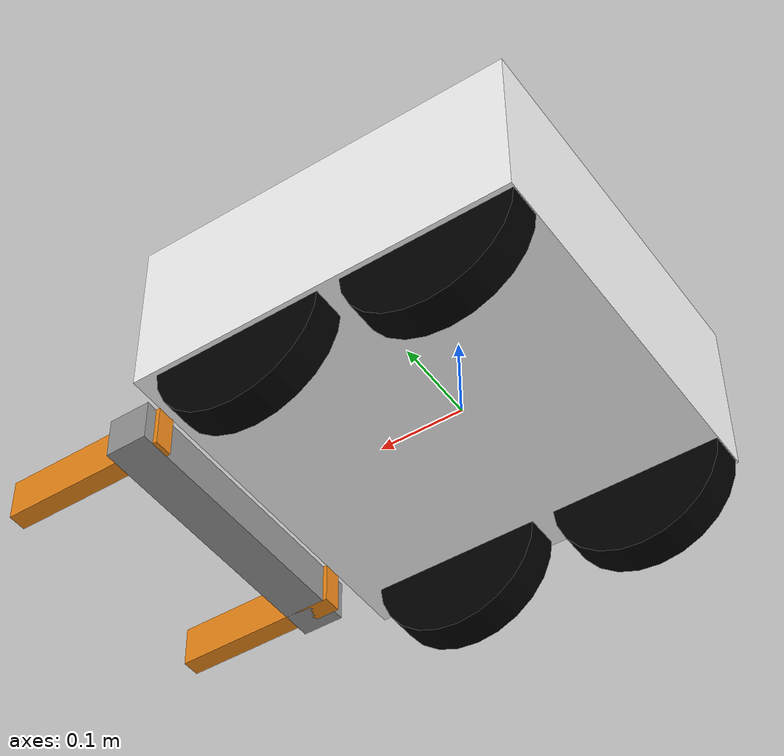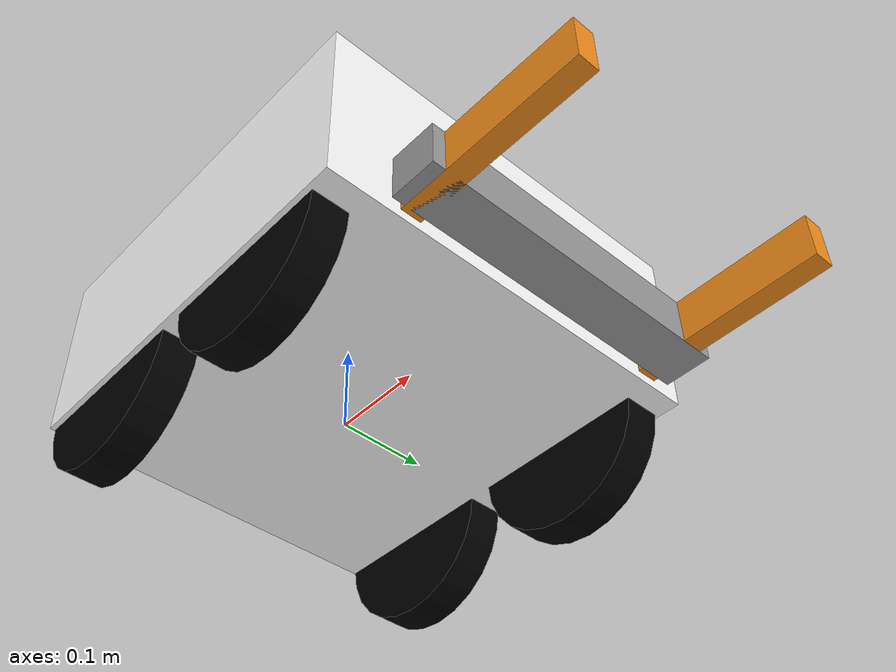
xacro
<?xml version="1.0"?>
<robot xmlns:xacro="http://www.ros.org/wiki/xacro"  name="robot">

     <xacro:include filename="inertial_macros.xacro" />
    <xacro:include filename="robot_core.xacro" />
    <xacro:include filename = "gazebo_control.xacro" />
    <xacro:include filename = "lidar.xacro" />
    <xacro:include filename = "gripper.xacro" />
    <xacro:include filename="gripper_tranmission.xacro" />
    <xacro:include filename="gazebo_plugin.xacro"/>

    <xacro:robot_controller/>
    <ros2_control name="gripper_robot_gazebo_system" type="system">
        <hardware>
            <plugin>gazebo_ros2_control/GazeboSystem</plugin>
        </hardware>
        <xacro:gripper_vertical_tranmission/>
        <xacro:gripper_finger_left_tranmission/>
        <xacro:gripper_finger_right_tranmission/>
    </ros2_control>

</robot>

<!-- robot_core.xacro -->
<robot xmlns:xacro="http://www.ros.org/wiki/xacro" >
<xacro:include filename="inertial_macros.xacro" />

 <material name="white">
     <color rgba="1 1 1 1" />
 </material>

 <material name="black">
     <color rgba="0 0 0 1"/>
 </material>

 <!-- BASE LINK -->

 <link name="base_link">

 </link>

 <!-- BASE_FOOTPRINT LINK -->
<joint name="base_footprint_joint" type="fixed">
 <parent link="base_link"/>
 <child link="base_footprint"/>
 <origin xyz="0 0 0" rpy="0 0 0"/>
</joint>

<link name="base_footprint">
</link>

 <joint name="chassis_joint" type="fixed">

 <parent link="base_link"/>
 <child link="chassis"/>
 <origin xyz="-0.1 0 0"/>

</joint>

<link name="chassis">
 <visual>
     <origin xyz="0.125 0 0.095" rpy="0 0 0"/>
     <geometry>
         <box size="0.451 0.451 0.2"/>
     </geometry>

     <material name="white"/>
 </visual>

 <collision>
    <origin xyz="0.125 0 0.095" rpy="0 0 0"/>
    <geometry>
        <box size="0.451 0.451 0.2"/>
    </geometry>
</collision>

<xacro:inertial_box mass="200" x="0.451" y="0.451" z="0.2">
      <origin xyz="0.125 0 0.0" rpy="0 0 0"/>
  </xacro:inertial_box>

</link>

<gazebo reference="chassis">
   <material>Gazebo/White</material>
</gazebo>

<!-- LEFT WHEEL01 -->

  <joint name="left_wheel_joint01" type="continuous">
    <parent link="base_link"/>
    <child link="left_wheel01"/>
    <origin xyz="0.125 0.2 0" rpy="-${pi/2} 0 0"/>
    <axis xyz="0 0 1"/>
  </joint>

  <link name="left_wheel01">
<visual>
    <geometry>
        <cylinder length="0.04" radius="0.1" />
    </geometry>
    <material name="black"/>
</visual>

<collision>

    <geometry>
        <cylinder length="0.04" radius="0.1" />
    </geometry>
</collision>

<xacro:inertial_cylinder mass="0.1" length="0.05" radius="0.1">
      <origin xyz="0 0 0" rpy="0 0 0"/>
  </xacro:inertial_cylinder>

</link>

<gazebo reference="left_wheel01">
   <material>Gazebo/Black</material>
</gazebo>

<!-- LEFT WHEEL02 -->

  <joint name="left_wheel_joint02" type="continuous">
    <parent link="base_link"/>
    <child link="left_wheel02"/>
    <origin xyz="-0.1 0.2 0" rpy="-${pi/2} 0 0"/>
    <axis xyz="0 0 1"/>
  </joint>

  <link name="left_wheel02">
<visual>
    <geometry>
        <cylinder length="0.04" radius="0.1" />
    </geometry>
    <material name="black"/>
</visual>

<collision>

    <geometry>
        <cylinder length="0.04" radius="0.1" />
    </geometry>
</collision>

<xacro:inertial_cylinder mass="0.1" length="0.05" radius="0.1">
      <origin xyz="0 0 0" rpy="0 0 0"/>
  </xacro:inertial_cylinder>

</link>

<gazebo reference="left_wheel02">
   <material>Gazebo/Black</material>
</gazebo>

<!-- RIGHT WHEEL01 -->

<joint name="right_wheel_joint01" type="continuous">
<parent link="base_link"/>
<child link="right_wheel01"/>
<origin xyz="0.125 -0.2 0" rpy="${pi/2} 0 0"/>
<axis xyz="0 0 -1"/>
</joint>

<link name="right_wheel01">
<visual>
    <geometry>
        <cylinder length="0.04" radius="0.1" />
    </geometry>
    <material name="black"/>
</visual>

<collision>

    <geometry>
        <cylinder length="0.04" radius="0.1" />
    </geometry>
</collision>

<xacro:inertial_cylinder mass="0.1" length="0.05" radius="0.1">
      <origin xyz="0 0 0" rpy="0 0 0"/>
  </xacro:inertial_cylinder>
</link>

 <gazebo reference="right_wheel01">
   <material>Gazebo/Black</material>
</gazebo>

<!-- RIGHT WHEEL02 -->

<joint name="right_wheel_joint02" type="continuous">
<parent link="base_link"/>
<child link="right_wheel02"/>
<origin xyz="-0.1 -0.2 0" rpy="${pi/2} 0 0"/>
<axis xyz="0 0 -1"/>
</joint>

<link name="right_wheel02">
<visual>
    <geometry>
        <cylinder length="0.04" radius="0.1" />
    </geometry>
    <material name="black"/>
</visual>

<collision>
    <geometry>
        <cylinder length="0.04" radius="0.1" />
    </geometry>
</collision>

<xacro:inertial_cylinder mass="0.1" length="0.05" radius="0.1">
      <origin xyz="0 0 0" rpy="0 0 0"/>
  </xacro:inertial_cylinder>
</link>

<gazebo reference="right_wheel02">
   <material>Gazebo/Black</material>
</gazebo>

</robot>

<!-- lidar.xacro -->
<robot xmlns:xacro="http://www.ros.org/wiki/xacro" >

    <joint name="laser_joint" type="fixed">
        <parent link="chassis"/>
        <child link="laser_frame"/>
        <origin xyz="0.15 0 0.25" rpy="0 0 0"/>
    </joint>

    <link name="laser_frame">
        <visual>
            <geometry>
                <cylinder radius="0.015" length="0.05"/>
            </geometry>
            <material name="black"/>
        </visual>
        <collision>
            <geometry>
                <cylinder radius="0.015" length="0.05"/>
            </geometry>
        </collision>
        <xacro:inertial_cylinder mass="0.1" length="0.05" radius="0.015">
            <origin xyz="0 0 0" rpy="0 0 0"/>
        </xacro:inertial_cylinder>
    </link>

    <gazebo reference="laser_frame">
        <material>Gazebo/Black</material>

        <sensor name="laser" type="ray">
            <pose> 0 0 0 0 0 0 </pose>
            <visualize>false</visualize>
            <update_rate>10</update_rate>
            <ray>
                <scan>
                    <horizontal>
                        <samples>360</samples>
                        <min_angle>-3.14</min_angle>
                        <max_angle>3.14</max_angle>
                    </horizontal>
                </scan>
                <range>
                    <min>0.3</min>
                    <max>12</max>
                </range>
            </ray>

            <plugin name="laser_controller" filename="libgazebo_ros_ray_sensor.so">
                <ros>
                    <argument>~/out:=scan</argument>
                </ros>
                <output_type>sensor_msgs/LaserScan</output_type>
                <frame_name>laser_frame</frame_name>
            </plugin>
        </sensor>
    </gazebo>

</robot>

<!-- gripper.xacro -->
<robot xmlns:xacro="http://www.ros.org/wiki/xacro" >

    <!-- Gripper Base -->
    <link name="gripper_base">
        <visual>
            <origin xyz="0 -0.15 0" rpy="0 0 0"/>
            <geometry>
                <box size="0.35 0.05 0.05"/>
            </geometry>
            <material name="gray"/>
        </visual>
        <collision>
            <origin xyz="0 -0.15 0" rpy="0 0 0"/>
            <geometry>
                <box size="0.35 0.05 0.05"/>
            </geometry>
            <surface>
                <friction>
                    <ode>
                        <mu>2.0</mu>  <!-- Increase primary friction -->
                        <mu2>2.0</mu2>  <!-- Increase secondary friction -->
                    </ode>
                </friction>
                <contact>
                    <ode>
                        <restitution>0.0</restitution>  <!-- Lower the bounce factor -->
                        <soft_cfm>0.1</soft_cfm>  <!-- Soft constraint for smooth contact -->
                        <soft_erp>0.7</soft_erp>  <!-- Error reduction for smoother response -->
                        <kp>1000.0</kp>  <!-- Reduce excessive force -->
                        <kd>100.0</kd>  <!-- Damping to prevent sudden jumps -->
                        <max_vel>0.01</max_vel>
                    </ode>
                </contact>
            </surface>
        </collision>
        <xacro:inertial_box mass="0.5" x="0.35" y="0.05" z="0.05" >
            <origin xyz="0 -0.15 0" rpy="0 0 0"/>
        </xacro:inertial_box>
    </link>

    <!-- Gripper Finger Left -->
    <link name="gripper_finger_left">
        <visual>
            <origin xyz="-0.075 -0.22 0" rpy="0 0 0"/>
            <geometry>
                <box size="0.0225 0.2 0.05"/>
            </geometry>
            <material name="orange"/>
        </visual>
        <collision>
            <origin xyz="-0.075 -0.22 0" rpy="0 0 0"/>
            <geometry>
                <box size="0.0225 0.2 0.1"/>
            </geometry>
            <surface>
                <friction>
                    <ode>
                        <mu>2.0</mu>  <!-- Increase primary friction -->
                        <mu2>2.0</mu2>  <!-- Increase secondary friction -->
                    </ode>
                </friction>
                <contact>
                    <ode>
                        <restitution>0.0</restitution>  <!-- Lower the bounce factor -->
                        <soft_cfm>0.1</soft_cfm>  <!-- Soft constraint for smooth contact -->
                        <soft_erp>0.7</soft_erp>  <!-- Error reduction for smoother response -->
                        <kp>1000.0</kp>  <!-- Reduce excessive force -->
                        <kd>100.0</kd>  <!-- Damping to prevent sudden jumps -->
                        <max_vel>0.01</max_vel>
                    </ode>
                </contact>
            </surface>
        </collision>
        <xacro:inertial_box mass="0.3" x="0.0225" y="0.2" z="0.05" >
            <origin xyz="-0.075 -0.22 0" rpy="0 0 0"/>
        </xacro:inertial_box>
    </link>

    <!-- Gripper Finger Right -->
    <link name="gripper_finger_right">
        <visual>
            <origin xyz="0.075 -0.22 0" rpy="0 0 0"/>
            <geometry>
                <box size="0.0225 0.2 0.05"/>
            </geometry>
            <material name="orange"/>
        </visual>
        <collision>
            <origin xyz="0.075 -0.22 0" rpy="0 0 0"/>
            <geometry>
                <box size="0.0225 0.2 0.1"/>
            </geometry>
            <surface>
                <friction>
                    <ode>
                        <mu>2.0</mu>  <!-- Increase primary friction -->
                        <mu2>2.0</mu2>  <!-- Increase secondary friction -->
                    </ode>
                </friction>
                <contact>
                    <ode>
                        <restitution>0.0</restitution>  <!-- Lower the bounce factor -->
                        <soft_cfm>0.1</soft_cfm>  <!-- Soft constraint for smooth contact -->
                        <soft_erp>0.7</soft_erp>  <!-- Error reduction for smoother response -->
                        <kp>1000.0</kp>  <!-- Reduce excessive force -->
                        <kd>100.0</kd>  <!-- Damping to prevent sudden jumps -->
                        <max_vel>0.01</max_vel>
                    </ode>
                </contact>
            </surface>
        </collision>
        <xacro:inertial_box mass="0.3" x="0.0225" y="0.2" z="0.05" >
            <origin xyz="0.075 -0.22 0" rpy="0 0 0"/>
        </xacro:inertial_box>
    </link>

    <!-- Vertical Movement Joint for Gripper -->
    <joint name="gripper_vertical_joint" type="prismatic">
        <parent link="chassis"/>
        <child link="gripper_base"/>
        <origin xyz="0.25 0 0" rpy="0 0 1.57"/>
        <axis xyz="0 0 1"/>
        <limit effort="80" lower="0" upper="0.13" velocity="0.1"/>
        <dynamics damping="50.0" friction="1.0"/>
    </joint>

    <!-- Gripper Finger Joints -->
    <joint name="gripper_finger_left_joint" type="prismatic">
        <parent link="gripper_base"/>
        <child link="gripper_finger_left"/>
        <origin xyz="-0.075 0 0" rpy="0 0 0"/>
        <axis xyz="1 0 0"/>
        <limit effort="100" lower="0" upper="0.1" velocity="0.1"/>
        <dynamics damping="20.0" friction="2.0"/>
    </joint>

    <joint name="gripper_finger_right_joint" type="prismatic">
        <parent link="gripper_base"/>
        <child link="gripper_finger_right"/>
        <origin xyz="0.075 0 0" rpy="0 0 0"/>
        <axis xyz="1 0 0"/>
        <limit effort="100" lower="-0.1" upper="0" velocity="0.1"/>
        <dynamics damping="20.0" friction="2.0"/>
    </joint>

    <!-- Gazebo Simulation for Gripper -->
    <gazebo reference="gripper_base">
        <material>Gazebo/Gray</material>
        <gravity>true</gravity>
        <ode>
            <solver_iterations>500</solver_iterations>  <!-- Increase solver iterations -->
            <solver_type>quick_nonlinear</solver_type>  <!-- Adjust solver for stability -->
        </ode>
    </gazebo>

    <gazebo reference="gripper_finger_left">
        <material>Gazebo/Orange</material>
        <gravity>true</gravity>
        <ode>
            <solver_iterations>500</solver_iterations>  <!-- Increase solver iterations -->
            <solver_type>quick_nonlinear</solver_type>  <!-- Adjust solver for stability -->
        </ode>
    </gazebo>

    <gazebo reference="gripper_finger_right">
        <material>Gazebo/Orange</material>
        <gravity>true</gravity>
        <ode>
            <solver_iterations>500</solver_iterations>  <!-- Increase solver iterations -->
            <solver_type>quick_nonlinear</solver_type>  <!-- Adjust solver for stability -->
        </ode>
    </gazebo>

</robot>
